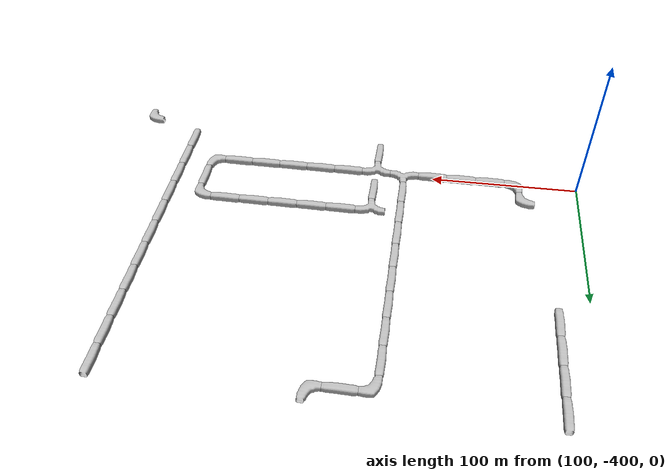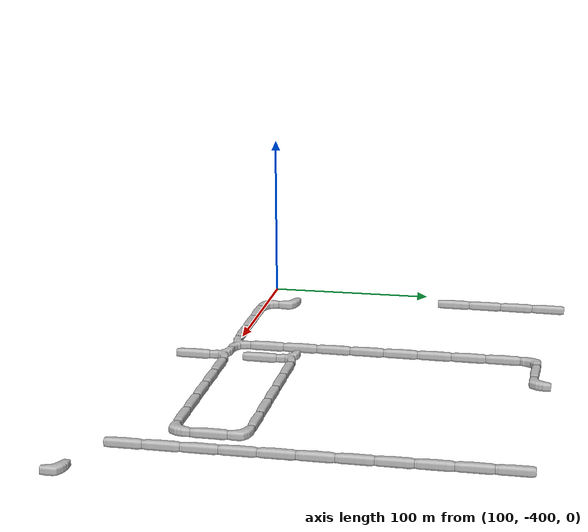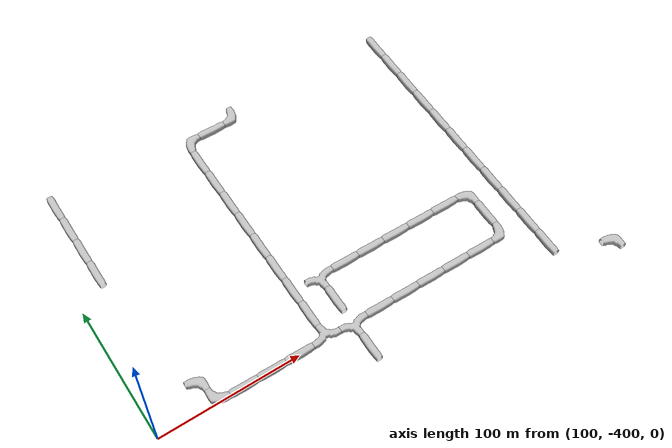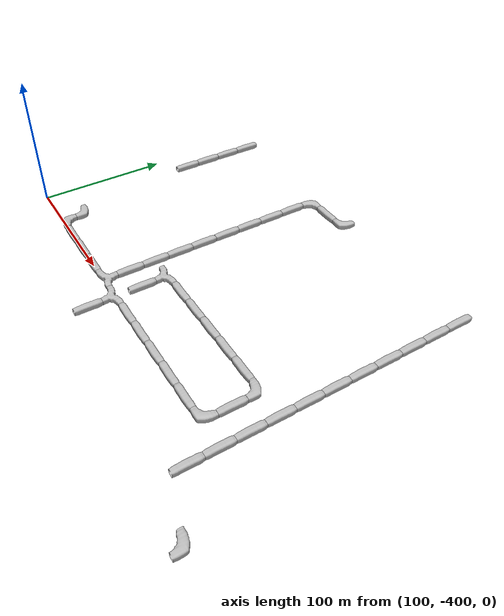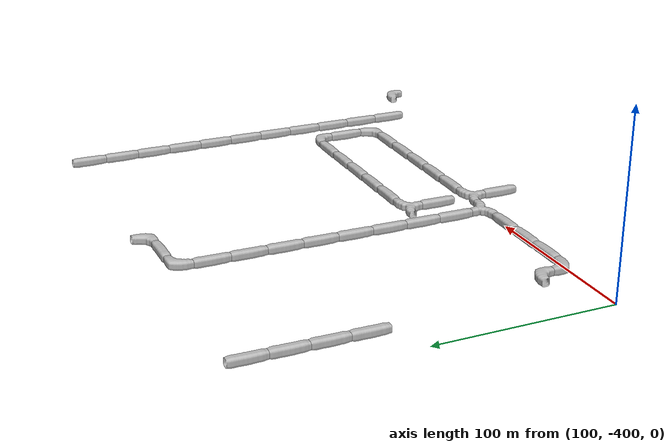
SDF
<sdf version="1.6">
 <world name="cave_8000_64">
  <include>
   <static>true</static>
   <name>cave_19_-11</name>
   <pose>380 -220 0 0 0 0.0</pose>
   <uri>model://cave_straight_20m</uri>
  </include>
  <include>
   <static>true</static>
   <name>cave_19_-12</name>
   <pose>380 -240 0 0 0 0.0</pose>
   <uri>model://cave_straight_20m</uri>
  </include>
  <include>
   <static>true</static>
   <name>cave_19_-13</name>
   <pose>380 -260 0 0 0 0.0</pose>
   <uri>model://cave_straight_20m</uri>
  </include>
  <include>
   <static>true</static>
   <name>cave_19_-14</name>
   <pose>380 -280 0 0 0 0.0</pose>
   <uri>model://cave_straight_20m</uri>
  </include>
  <include>
   <static>true</static>
   <name>cave_19_-15</name>
   <pose>380 -300 0 0 0 0.0</pose>
   <uri>model://cave_straight_20m</uri>
  </include>
  <include>
   <static>true</static>
   <name>cave_19_-16</name>
   <pose>380 -320 0 0 0 0.0</pose>
   <uri>model://cave_straight_20m</uri>
  </include>
  <include>
   <static>true</static>
   <name>cave_19_-17</name>
   <pose>380 -340 0 0 0 0.0</pose>
   <uri>model://cave_straight_20m</uri>
  </include>
  <include>
   <static>true</static>
   <name>cave_19_-18</name>
   <pose>380 -360 0 0 0 0.0</pose>
   <uri>model://cave_straight_20m</uri>
  </include>
  <include>
   <static>true</static>
   <name>cave_19_-19</name>
   <pose>380 -380 0 0 0 0.0</pose>
   <uri>model://cave_straight_20m</uri>
  </include>
  <include>
   <static>true</static>
   <name>cave_19_-20</name>
   <pose>380 -400 0 0 0 0.0</pose>
   <uri>model://cave_straight_20m</uri>
  </include>
  <include>
   <static>true</static>
   <name>cave_19_-21</name>
   <pose>380 -420 0 0 0 0.0</pose>
   <uri>model://cave_straight_20m</uri>
  </include>
  <include>
   <static>true</static>
   <name>cave_21_-22</name>
   <pose>420 -440 0 0 0 3.141592653589793</pose>
   <uri>model://cave_L_20m</uri>
  </include>
  <include>
   <static>true</static>
   <name>cave_12_-21</name>
   <pose>240 -420 0 0 0 0.0</pose>
   <uri>model://cave_straight_20m</uri>
  </include>
  <include>
   <static>true</static>
   <name>cave_12_-20</name>
   <pose>240 -400 0 0 0 3.141592653589793</pose>
   <uri>model://cave_3way_20m</uri>
  </include>
  <include>
   <static>true</static>
   <name>cave_13_-20</name>
   <pose>260 -400 0 0 0 1.5707963267948966</pose>
   <uri>model://cave_straight_20m</uri>
  </include>
  <include>
   <static>true</static>
   <name>cave_14_-20</name>
   <pose>280 -400 0 0 0 1.5707963267948966</pose>
   <uri>model://cave_straight_20m</uri>
  </include>
  <include>
   <static>true</static>
   <name>cave_15_-20</name>
   <pose>300 -400 0 0 0 1.5707963267948966</pose>
   <uri>model://cave_straight_20m</uri>
  </include>
  <include>
   <static>true</static>
   <name>cave_16_-20</name>
   <pose>320 -400 0 0 0 1.5707963267948966</pose>
   <uri>model://cave_straight_20m</uri>
  </include>
  <include>
   <static>true</static>
   <name>cave_17_-20</name>
   <pose>340 -400 0 0 0 1.5707963267948966</pose>
   <uri>model://cave_straight_20m</uri>
  </include>
  <include>
   <static>true</static>
   <name>cave_18_-20</name>
   <pose>360 -400 0 0 0 1.5707963267948966</pose>
   <uri>model://cave_L_20m</uri>
  </include>
  <include>
   <static>true</static>
   <name>cave_18_-19</name>
   <pose>360 -380 0 0 0 0.0</pose>
   <uri>model://cave_straight_20m</uri>
  </include>
  <include>
   <static>true</static>
   <name>cave_18_-18</name>
   <pose>360 -360 0 0 0 3.141592653589793</pose>
   <uri>model://cave_L_20m</uri>
  </include>
  <include>
   <static>true</static>
   <name>cave_17_-18</name>
   <pose>340 -360 0 0 0 1.5707963267948966</pose>
   <uri>model://cave_straight_20m</uri>
  </include>
  <include>
   <static>true</static>
   <name>cave_16_-18</name>
   <pose>320 -360 0 0 0 1.5707963267948966</pose>
   <uri>model://cave_straight_20m</uri>
  </include>
  <include>
   <static>true</static>
   <name>cave_15_-18</name>
   <pose>300 -360 0 0 0 1.5707963267948966</pose>
   <uri>model://cave_straight_20m</uri>
  </include>
  <include>
   <static>true</static>
   <name>cave_14_-18</name>
   <pose>280 -360 0 0 0 1.5707963267948966</pose>
   <uri>model://cave_straight_20m</uri>
  </include>
  <include>
   <static>true</static>
   <name>cave_13_-18</name>
   <pose>260 -360 0 0 0 1.5707963267948966</pose>
   <uri>model://cave_straight_20m</uri>
  </include>
  <include>
   <static>true</static>
   <name>cave_12_-18</name>
   <pose>240 -360 0 0 0 3.141592653589793</pose>
   <uri>model://cave_3way_20m</uri>
  </include>
  <include>
   <static>true</static>
   <name>cave_12_-19</name>
   <pose>240 -380 0 0 0 0.0</pose>
   <uri>model://cave_straight_20m</uri>
  </include>
  <include>
   <static>true</static>
   <name>cave_11_-20</name>
   <pose>220 -400 0 0 0 0.0</pose>
   <uri>model://cave_3way_20m</uri>
  </include>
  <include>
   <static>true</static>
   <name>cave_10_-20</name>
   <pose>200 -400 0 0 0 1.5707963267948966</pose>
   <uri>model://cave_straight_20m</uri>
  </include>
  <include>
   <static>true</static>
   <name>cave_9_-20</name>
   <pose>180 -400 0 0 0 1.5707963267948966</pose>
   <uri>model://cave_straight_20m</uri>
  </include>
  <include>
   <static>true</static>
   <name>cave_8_-20</name>
   <pose>160 -400 0 0 0 1.5707963267948966</pose>
   <uri>model://cave_straight_20m</uri>
  </include>
  <include>
   <static>true</static>
   <name>cave_7_-20</name>
   <pose>140 -400 0 0 0 0.0</pose>
   <uri>model://cave_L_20m</uri>
  </include>
  <include>
   <static>true</static>
   <name>cave_7_-19</name>
   <pose>140 -380 0 0 0 3.141592653589793</pose>
   <uri>model://cave_L_20m</uri>
  </include>
  <include>
   <static>true</static>
   <name>cave_6_-14</name>
   <pose>120 -280 0 0 0 0.0</pose>
   <uri>model://cave_straight_20m</uri>
  </include>
  <include>
   <static>true</static>
   <name>cave_6_-13</name>
   <pose>120 -260 0 0 0 0.0</pose>
   <uri>model://cave_straight_20m</uri>
  </include>
  <include>
   <static>true</static>
   <name>cave_6_-12</name>
   <pose>120 -240 0 0 0 0.0</pose>
   <uri>model://cave_straight_20m</uri>
  </include>
  <include>
   <static>true</static>
   <name>cave_6_-11</name>
   <pose>120 -220 0 0 0 0.0</pose>
   <uri>model://cave_straight_20m</uri>
  </include>
  <include>
   <static>true</static>
   <name>cave_11_-19</name>
   <pose>220 -380 0 0 0 0.0</pose>
   <uri>model://cave_straight_20m</uri>
  </include>
  <include>
   <static>true</static>
   <name>cave_11_-18</name>
   <pose>220 -360 0 0 0 0.0</pose>
   <uri>model://cave_straight_20m</uri>
  </include>
  <include>
   <static>true</static>
   <name>cave_11_-17</name>
   <pose>220 -340 0 0 0 0.0</pose>
   <uri>model://cave_straight_20m</uri>
  </include>
  <include>
   <static>true</static>
   <name>cave_11_-16</name>
   <pose>220 -320 0 0 0 0.0</pose>
   <uri>model://cave_straight_20m</uri>
  </include>
  <include>
   <static>true</static>
   <name>cave_11_-15</name>
   <pose>220 -300 0 0 0 0.0</pose>
   <uri>model://cave_straight_20m</uri>
  </include>
  <include>
   <static>true</static>
   <name>cave_11_-14</name>
   <pose>220 -280 0 0 0 0.0</pose>
   <uri>model://cave_straight_20m</uri>
  </include>
  <include>
   <static>true</static>
   <name>cave_11_-13</name>
   <pose>220 -260 0 0 0 0.0</pose>
   <uri>model://cave_straight_20m</uri>
  </include>
  <include>
   <static>true</static>
   <name>cave_11_-12</name>
   <pose>220 -240 0 0 0 0.0</pose>
   <uri>model://cave_straight_20m</uri>
  </include>
  <include>
   <static>true</static>
   <name>cave_11_-11</name>
   <pose>220 -220 0 0 0 -1.5707963267948966</pose>
   <uri>model://cave_L_20m</uri>
  </include>
  <include>
   <static>true</static>
   <name>cave_12_-11</name>
   <pose>240 -220 0 0 0 1.5707963267948966</pose>
   <uri>model://cave_straight_20m</uri>
  </include>
  <include>
   <static>true</static>
   <name>cave_13_-11</name>
   <pose>260 -220 0 0 0 1.5707963267948966</pose>
   <uri>model://cave_L_20m</uri>
  </include>
 </world>
</sdf>
